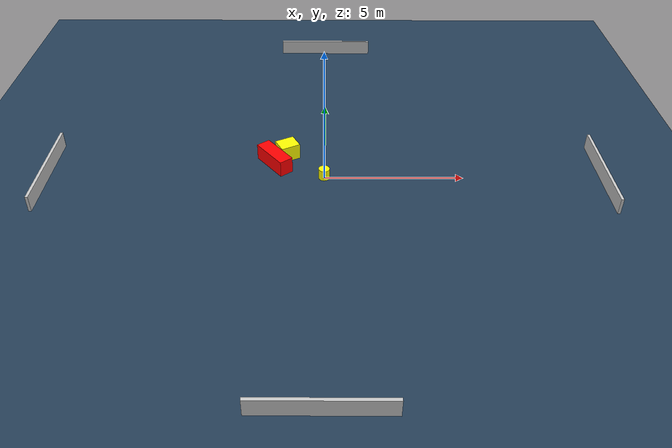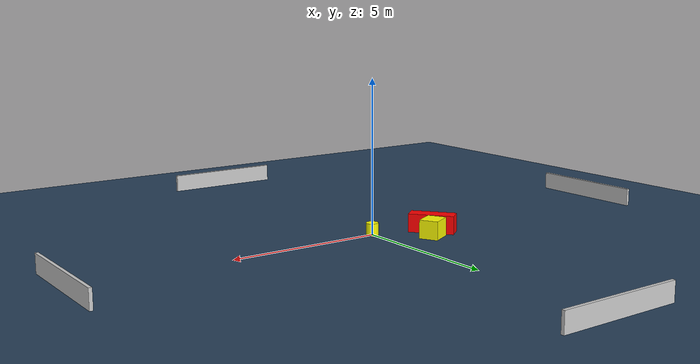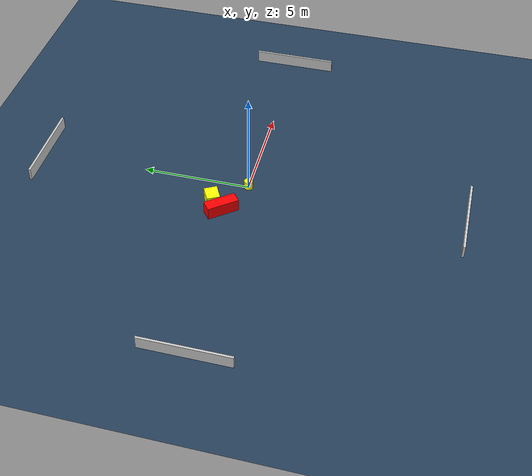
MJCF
<?xml version="1.0" ?>
<mujoco model="generated_environment">
  <option timestep="0.01" integrator="RK4" cone="elliptic"/>
  <default>
    <geom density="1"/>
  </default>
  <asset>
    <texture builtin="gradient" height="3072" name="skybox" rgb1="0.3 0.5 0.7" rgb2="0 0 0" type="skybox" width="512"/>
    <texture builtin="checker" height="300" name="groundplane" rgb1="0.2 0.3 0.4" rgb2="0.1 0.2 0.3" type="2d" width="300"/>
    <material name="groundplane" reflectance="0.2" texrepeat="5 5" texture="groundplane"/>
  </asset>
  <worldbody>
    <light dir="0 0 -1" directional="true" pos="0 0 1.5"/>
    <geom condim="3" friction="0.5 0.005 0.001" material="groundplane" name="floor" pos="0 0 0" size="0 0 0.05" type="plane"/>
    <body name="walls">
      <geom name="wall_1" condim="4" pos="-10.0 0.0 0.3" rgba="0.800000011920929 0.800000011920929 0.800000011920929 1.0" size="0.05 2.0 0.3" type="box"/>
      <geom name="wall_2" condim="4" pos="10.0 0.0 0.3" rgba="0.800000011920929 0.800000011920929 0.800000011920929 1.0" size="0.05 2.0 0.3" type="box"/>
      <geom name="wall_3" condim="4" pos="0.0 -10.0 0.3" rgba="0.800000011920929 0.800000011920929 0.800000011920929 1.0" size="2.0 0.05 0.3" type="box"/>
      <geom name="wall_4" condim="4" pos="0.0 10.0 0.3" rgba="0.800000011920929 0.800000011920929 0.800000011920929 1.0" size="2.0 0.05 0.3" type="box"/>
    </body>
    <body name="robot">
      <joint name="joint_x" type="slide" pos="0 0 0" axis="1 0 0"/>
      <joint name="joint_y" type="slide" pos="0 0 0" axis="0 1 0"/>
      <geom name="robot" type="cylinder" pos="0.0 0.0 0.2" size="0.2 0.2 0.0" mass="5.0" friction="1.0 0.005 0.0001" condim="4" rgba="1.0 1.0 0.0 1.0"/>
    </body>
    <body name="obstacle_1_movable">
      <geom name="obstacle_1_movable" condim="4" pos="-1.3756157044216464 1.358544566254443 0.3" euler="0 0 297.7798888183718" friction="0.0 0.005 0.001" rgba="1.0 1.0 0.0 1.0" size="0.30748464324350544 0.36177424647851286 0.3" type="box" mass="0.1"/>
      <joint type="free"/>
    </body>
    <body name="obstacle_2_static">
      <geom name="obstacle_2_static" condim="4" pos="-1.826789691843136 0.8023965584098436 0.3" euler="0 0 38.30887127149076" friction="0.0 0.005 0.001" rgba="1.0 0.0 0.0 1.0" size="0.2633752188903307 0.7432376413504638 0.3" type="box"/>
    </body>
  </worldbody>
  <actuator>
    <motor name="actuator_x" joint="joint_x" gear="1" ctrlrange="-1 1"/>
    <motor name="actuator_y" joint="joint_y" gear="1" ctrlrange="-1 1"/>
  </actuator>
</mujoco>
